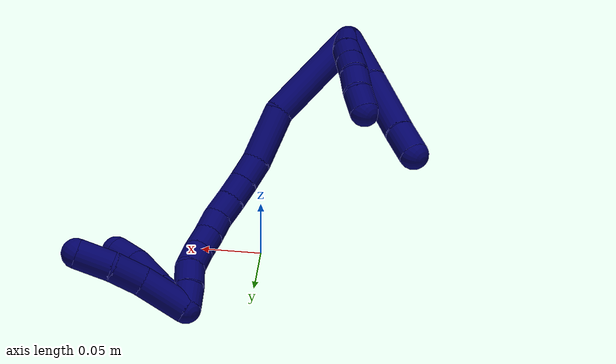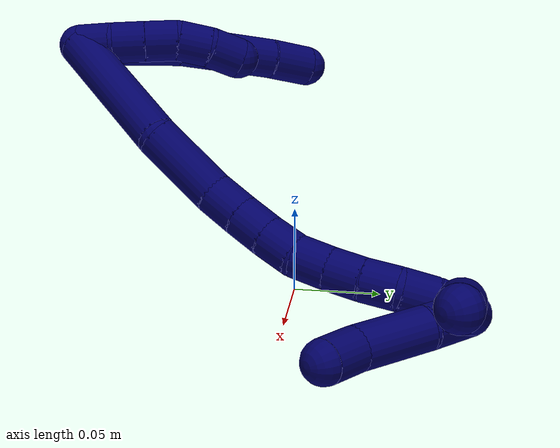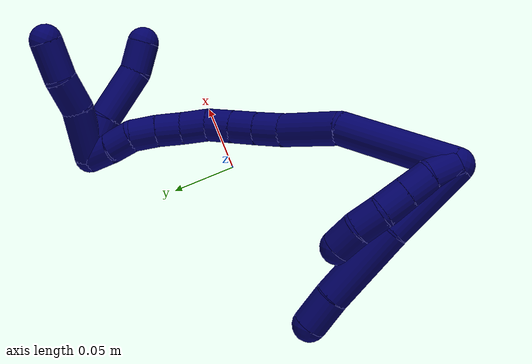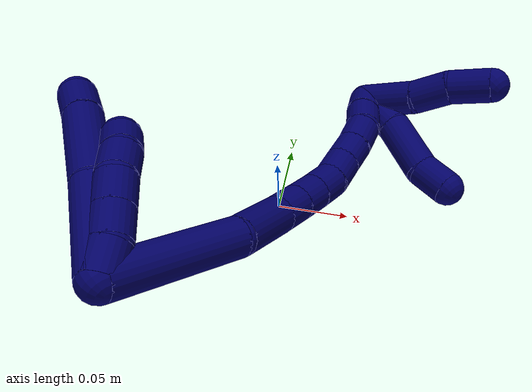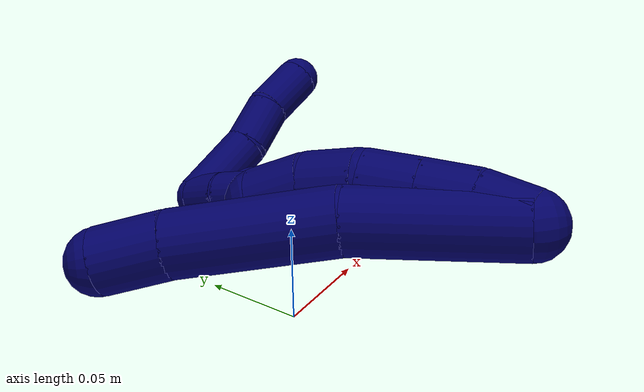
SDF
<sdf version="1.7">
 <world name="default">
  <model name="7">
   <static>0</static>
   <link name="7">
    <collision name="collision-cylinder-e_1_2_8">
     <pose>0.009181 0.007609 0.028771 -0.25856 0.299227 -0.039189</pose>
     <geometry><cylinder><radius>0.0125</radius><length>0.062288</length></cylinder></geometry>
     <surface>
      <friction><ode><mu>1.16</mu><mu2>1.16</mu2><slip1>0</slip1><slip2>0</slip2></ode></friction>
      <contact><ode><kp>1e+06</kp><kd>1</kd><max_vel>0</max_vel><min_depth>0.001</min_depth></ode></contact>
     </surface>
    </collision>
    <visual name="visual-cylinder-e_1_2_8">
     <pose>0.009181 0.007609 0.028771 -0.25856 0.299227 -0.039189</pose>
     <geometry><cylinder><radius>0.0125</radius><length>0.062288</length></cylinder></geometry>
     <material><ambient>0.003922 0 0.403922 1</ambient></material>
    </visual>
    <collision name="collision-cylinder-e_2_8_9">
     <pose>0.023375 0.025432 0.086164 -0.342769 0.1635 -0.02836</pose>
     <geometry><cylinder><radius>0.0125</radius><length>0.061601</length></cylinder></geometry>
     <surface>
      <friction><ode><mu>1.16</mu><mu2>1.16</mu2><slip1>0</slip1><slip2>0</slip2></ode></friction>
      <contact><ode><kp>1e+06</kp><kd>1</kd><max_vel>0</max_vel><min_depth>0.001</min_depth></ode></contact>
     </surface>
    </collision>
    <visual name="visual-cylinder-e_2_8_9">
     <pose>0.023375 0.025432 0.086164 -0.342769 0.1635 -0.02836</pose>
     <geometry><cylinder><radius>0.0125</radius><length>0.061601</length></cylinder></geometry>
     <material><ambient>0.003922 0 0.403922 1</ambient></material>
    </visual>
    <collision name="collision-cylinder-e_3_9_6">
     <pose>0.029195 0.040198 0.126995 -0.356802 0.061822 -0.011151</pose>
     <geometry><cylinder><radius>0.0125</radius><length>0.026111</length></cylinder></geometry>
     <surface>
      <friction><ode><mu>1.16</mu><mu2>1.16</mu2><slip1>0</slip1><slip2>0</slip2></ode></friction>
      <contact><ode><kp>1e+06</kp><kd>1</kd><max_vel>0</max_vel><min_depth>0.001</min_depth></ode></contact>
     </surface>
    </collision>
    <visual name="visual-cylinder-e_3_9_6">
     <pose>0.029195 0.040198 0.126995 -0.356802 0.061822 -0.011151</pose>
     <geometry><cylinder><radius>0.0125</radius><length>0.026111</length></cylinder></geometry>
     <material><ambient>0.003922 0 0.403922 1</ambient></material>
    </visual>
    <collision name="collision-cylinder-e_1_2_10">
     <pose>0.006449 0.00271 0.007146 -0.362456 0.700946 -0.133771</pose>
     <geometry><cylinder><radius>0.0125</radius><length>0.02</length></cylinder></geometry>
     <surface>
      <friction><ode><mu>1.16</mu><mu2>1.16</mu2><slip1>0</slip1><slip2>0</slip2></ode></friction>
      <contact><ode><kp>1e+06</kp><kd>1</kd><max_vel>0</max_vel><min_depth>0.001</min_depth></ode></contact>
     </surface>
    </collision>
    <visual name="visual-cylinder-e_1_2_10">
     <pose>0.006449 0.00271 0.007146 -0.362456 0.700946 -0.133771</pose>
     <geometry><cylinder><radius>0.0125</radius><length>0.02</length></cylinder></geometry>
     <material><ambient>0.003922 0 0.403922 1</ambient></material>
    </visual>
    <collision name="collision-cylinder-e_2_10_11">
     <pose>0.017624 0.00789 0.022752 -0.284139 0.492117 -0.071814</pose>
     <geometry><cylinder><radius>0.0125</radius><length>0.02</length></cylinder></geometry>
     <surface>
      <friction><ode><mu>1.16</mu><mu2>1.16</mu2><slip1>0</slip1><slip2>0</slip2></ode></friction>
      <contact><ode><kp>1e+06</kp><kd>1</kd><max_vel>0</max_vel><min_depth>0.001</min_depth></ode></contact>
     </surface>
    </collision>
    <visual name="visual-cylinder-e_2_10_11">
     <pose>0.017624 0.00789 0.022752 -0.284139 0.492117 -0.071814</pose>
     <geometry><cylinder><radius>0.0125</radius><length>0.02</length></cylinder></geometry>
     <material><ambient>0.003922 0 0.403922 1</ambient></material>
    </visual>
    <collision name="collision-cylinder-e_3_11_12">
     <pose>0.026978 0.012893 0.039706 -0.289662 0.48135 -0.071563</pose>
     <geometry><cylinder><radius>0.0125</radius><length>0.02</length></cylinder></geometry>
     <surface>
      <friction><ode><mu>1.16</mu><mu2>1.16</mu2><slip1>0</slip1><slip2>0</slip2></ode></friction>
      <contact><ode><kp>1e+06</kp><kd>1</kd><max_vel>0</max_vel><min_depth>0.001</min_depth></ode></contact>
     </surface>
    </collision>
    <visual name="visual-cylinder-e_3_11_12">
     <pose>0.026978 0.012893 0.039706 -0.289662 0.48135 -0.071563</pose>
     <geometry><cylinder><radius>0.0125</radius><length>0.02</length></cylinder></geometry>
     <material><ambient>0.003922 0 0.403922 1</ambient></material>
    </visual>
    <collision name="collision-cylinder-e_4_12_13">
     <pose>0.034901 0.02006 0.056426 -0.513194 0.335513 -0.088809</pose>
     <geometry><cylinder><radius>0.0125</radius><length>0.02</length></cylinder></geometry>
     <surface>
      <friction><ode><mu>1.16</mu><mu2>1.16</mu2><slip1>0</slip1><slip2>0</slip2></ode></friction>
      <contact><ode><kp>1e+06</kp><kd>1</kd><max_vel>0</max_vel><min_depth>0.001</min_depth></ode></contact>
     </surface>
    </collision>
    <visual name="visual-cylinder-e_4_12_13">
     <pose>0.034901 0.02006 0.056426 -0.513194 0.335513 -0.088809</pose>
     <geometry><cylinder><radius>0.0125</radius><length>0.02</length></cylinder></geometry>
     <material><ambient>0.003922 0 0.403922 1</ambient></material>
    </visual>
    <collision name="collision-cylinder-e_5_13_5">
     <pose>0.039174 0.029912 0.073128 -0.551648 0.098202 -0.027815</pose>
     <geometry><cylinder><radius>0.0125</radius><length>0.02</length></cylinder></geometry>
     <surface>
      <friction><ode><mu>1.16</mu><mu2>1.16</mu2><slip1>0</slip1><slip2>0</slip2></ode></friction>
      <contact><ode><kp>1e+06</kp><kd>1</kd><max_vel>0</max_vel><min_depth>0.001</min_depth></ode></contact>
     </surface>
    </collision>
    <visual name="visual-cylinder-e_5_13_5">
     <pose>0.039174 0.029912 0.073128 -0.551648 0.098202 -0.027815</pose>
     <geometry><cylinder><radius>0.0125</radius><length>0.02</length></cylinder></geometry>
     <material><ambient>0.003922 0 0.403922 1</ambient></material>
    </visual>
    <collision name="collision-cylinder-e_1_2_14">
     <pose>0.023559 0.037425 0.00159 -1.52834 0.561432 -0.539226</pose>
     <geometry><cylinder><radius>0.0125</radius><length>0.088503</length></cylinder></geometry>
     <surface>
      <friction><ode><mu>1.16</mu><mu2>1.16</mu2><slip1>0</slip1><slip2>0</slip2></ode></friction>
      <contact><ode><kp>1e+06</kp><kd>1</kd><max_vel>0</max_vel><min_depth>0.001</min_depth></ode></contact>
     </surface>
    </collision>
    <visual name="visual-cylinder-e_1_2_14">
     <pose>0.023559 0.037425 0.00159 -1.52834 0.561432 -0.539226</pose>
     <geometry><cylinder><radius>0.0125</radius><length>0.088503</length></cylinder></geometry>
     <material><ambient>0.003922 0 0.403922 1</ambient></material>
    </visual>
    <collision name="collision-cylinder-e_2_14_15">
     <pose>0.055389 0.096125 0.010523 -1.23846 0.352136 -0.252264</pose>
     <geometry><cylinder><radius>0.0125</radius><length>0.047957</length></cylinder></geometry>
     <surface>
      <friction><ode><mu>1.16</mu><mu2>1.16</mu2><slip1>0</slip1><slip2>0</slip2></ode></friction>
      <contact><ode><kp>1e+06</kp><kd>1</kd><max_vel>0</max_vel><min_depth>0.001</min_depth></ode></contact>
     </surface>
    </collision>
    <visual name="visual-cylinder-e_2_14_15">
     <pose>0.055389 0.096125 0.010523 -1.23846 0.352136 -0.252264</pose>
     <geometry><cylinder><radius>0.0125</radius><length>0.047957</length></cylinder></geometry>
     <material><ambient>0.003922 0 0.403922 1</ambient></material>
    </visual>
    <collision name="collision-cylinder-e_3_15_16">
     <pose>0.069104 0.126334 0.020733 -1.26023 0.525803 -0.387621</pose>
     <geometry><cylinder><radius>0.0125</radius><length>0.021696</length></cylinder></geometry>
     <surface>
      <friction><ode><mu>1.16</mu><mu2>1.16</mu2><slip1>0</slip1><slip2>0</slip2></ode></friction>
      <contact><ode><kp>1e+06</kp><kd>1</kd><max_vel>0</max_vel><min_depth>0.001</min_depth></ode></contact>
     </surface>
    </collision>
    <visual name="visual-cylinder-e_3_15_16">
     <pose>0.069104 0.126334 0.020733 -1.26023 0.525803 -0.387621</pose>
     <geometry><cylinder><radius>0.0125</radius><length>0.021696</length></cylinder></geometry>
     <material><ambient>0.003922 0 0.403922 1</ambient></material>
    </visual>
    <collision name="collision-cylinder-e_4_16_17">
     <pose>0.079987 0.14338 0.02619 -1.26177 0.568342 -0.420404</pose>
     <geometry><cylinder><radius>0.0125</radius><length>0.020207</length></cylinder></geometry>
     <surface>
      <friction><ode><mu>1.16</mu><mu2>1.16</mu2><slip1>0</slip1><slip2>0</slip2></ode></friction>
      <contact><ode><kp>1e+06</kp><kd>1</kd><max_vel>0</max_vel><min_depth>0.001</min_depth></ode></contact>
     </surface>
    </collision>
    <visual name="visual-cylinder-e_4_16_17">
     <pose>0.079987 0.14338 0.02619 -1.26177 0.568342 -0.420404</pose>
     <geometry><cylinder><radius>0.0125</radius><length>0.020207</length></cylinder></geometry>
     <material><ambient>0.003922 0 0.403922 1</ambient></material>
    </visual>
    <collision name="collision-cylinder-e_5_17_18">
     <pose>0.091397 0.159302 0.031503 -1.23532 0.625323 -0.451454</pose>
     <geometry><cylinder><radius>0.0125</radius><length>0.020404</length></cylinder></geometry>
     <surface>
      <friction><ode><mu>1.16</mu><mu2>1.16</mu2><slip1>0</slip1><slip2>0</slip2></ode></friction>
      <contact><ode><kp>1e+06</kp><kd>1</kd><max_vel>0</max_vel><min_depth>0.001</min_depth></ode></contact>
     </surface>
    </collision>
    <visual name="visual-cylinder-e_5_17_18">
     <pose>0.091397 0.159302 0.031503 -1.23532 0.625323 -0.451454</pose>
     <geometry><cylinder><radius>0.0125</radius><length>0.020404</length></cylinder></geometry>
     <material><ambient>0.003922 0 0.403922 1</ambient></material>
    </visual>
    <collision name="collision-cylinder-e_6_18_19">
     <pose>0.103745 0.173545 0.039109 -0.921432 0.668348 -0.341302</pose>
     <geometry><cylinder><radius>0.0125</radius><length>0.020579</length></cylinder></geometry>
     <surface>
      <friction><ode><mu>1.16</mu><mu2>1.16</mu2><slip1>0</slip1><slip2>0</slip2></ode></friction>
      <contact><ode><kp>1e+06</kp><kd>1</kd><max_vel>0</max_vel><min_depth>0.001</min_depth></ode></contact>
     </surface>
    </collision>
    <visual name="visual-cylinder-e_6_18_19">
     <pose>0.103745 0.173545 0.039109 -0.921432 0.668348 -0.341302</pose>
     <geometry><cylinder><radius>0.0125</radius><length>0.020579</length></cylinder></geometry>
     <material><ambient>0.003922 0 0.403922 1</ambient></material>
    </visual>
    <collision name="collision-cylinder-e_7_19_20">
     <pose>0.116889 0.185798 0.04852 -0.909807 0.742479 -0.376312</pose>
     <geometry><cylinder><radius>0.0125</radius><length>0.020019</length></cylinder></geometry>
     <surface>
      <friction><ode><mu>1.16</mu><mu2>1.16</mu2><slip1>0</slip1><slip2>0</slip2></ode></friction>
      <contact><ode><kp>1e+06</kp><kd>1</kd><max_vel>0</max_vel><min_depth>0.001</min_depth></ode></contact>
     </surface>
    </collision>
    <visual name="visual-cylinder-e_7_19_20">
     <pose>0.116889 0.185798 0.04852 -0.909807 0.742479 -0.376312</pose>
     <geometry><cylinder><radius>0.0125</radius><length>0.020019</length></cylinder></geometry>
     <material><ambient>0.003922 0 0.403922 1</ambient></material>
    </visual>
    <collision name="collision-cylinder-e_8_20_21">
     <pose>0.130391 0.197124 0.058552 -0.78535 0.713237 -0.306192</pose>
     <geometry><cylinder><radius>0.0125</radius><length>0.020586</length></cylinder></geometry>
     <surface>
      <friction><ode><mu>1.16</mu><mu2>1.16</mu2><slip1>0</slip1><slip2>0</slip2></ode></friction>
      <contact><ode><kp>1e+06</kp><kd>1</kd><max_vel>0</max_vel><min_depth>0.001</min_depth></ode></contact>
     </surface>
    </collision>
    <visual name="visual-cylinder-e_8_20_21">
     <pose>0.130391 0.197124 0.058552 -0.78535 0.713237 -0.306192</pose>
     <geometry><cylinder><radius>0.0125</radius><length>0.020586</length></cylinder></geometry>
     <material><ambient>0.003922 0 0.403922 1</ambient></material>
    </visual>
    <collision name="collision-cylinder-e_9_21_22">
     <pose>0.141016 0.208144 0.071467 -0.639863 0.39855 -0.133622</pose>
     <geometry><cylinder><radius>0.0125</radius><length>0.020047</length></cylinder></geometry>
     <surface>
      <friction><ode><mu>1.16</mu><mu2>1.16</mu2><slip1>0</slip1><slip2>0</slip2></ode></friction>
      <contact><ode><kp>1e+06</kp><kd>1</kd><max_vel>0</max_vel><min_depth>0.001</min_depth></ode></contact>
     </surface>
    </collision>
    <visual name="visual-cylinder-e_9_21_22">
     <pose>0.141016 0.208144 0.071467 -0.639863 0.39855 -0.133622</pose>
     <geometry><cylinder><radius>0.0125</radius><length>0.020047</length></cylinder></geometry>
     <material><ambient>0.003922 0 0.403922 1</ambient></material>
    </visual>
    <collision name="collision-cylinder-e_10_22_1">
     <pose>0.148866 0.220201 0.085323 -0.792721 0.407178 -0.172374</pose>
     <geometry><cylinder><radius>0.0125</radius><length>0.020002</length></cylinder></geometry>
     <surface>
      <friction><ode><mu>1.16</mu><mu2>1.16</mu2><slip1>0</slip1><slip2>0</slip2></ode></friction>
      <contact><ode><kp>1e+06</kp><kd>1</kd><max_vel>0</max_vel><min_depth>0.001</min_depth></ode></contact>
     </surface>
    </collision>
    <visual name="visual-cylinder-e_10_22_1">
     <pose>0.148866 0.220201 0.085323 -0.792721 0.407178 -0.172374</pose>
     <geometry><cylinder><radius>0.0125</radius><length>0.020002</length></cylinder></geometry>
     <material><ambient>0.003922 0 0.403922 1</ambient></material>
    </visual>
    <collision name="collision-cylinder-e_1_1_23">
     <pose>0.16643 0.224031 0.076111 2.97017 0.707989 2.68471</pose>
     <geometry><cylinder><radius>0.0125</radius><length>0.041836</length></cylinder></geometry>
     <surface>
      <friction><ode><mu>1.16</mu><mu2>1.16</mu2><slip1>0</slip1><slip2>0</slip2></ode></friction>
      <contact><ode><kp>1e+06</kp><kd>1</kd><max_vel>0</max_vel><min_depth>0.001</min_depth></ode></contact>
     </surface>
    </collision>
    <visual name="visual-cylinder-e_1_1_23">
     <pose>0.16643 0.224031 0.076111 2.97017 0.707989 2.68471</pose>
     <geometry><cylinder><radius>0.0125</radius><length>0.041836</length></cylinder></geometry>
     <material><ambient>0.003922 0 0.403922 1</ambient></material>
    </visual>
    <collision name="collision-cylinder-e_2_23_24">
     <pose>0.191291 0.220247 0.052408 3.00899 0.946189 2.88359</pose>
     <geometry><cylinder><radius>0.0125</radius><length>0.027757</length></cylinder></geometry>
     <surface>
      <friction><ode><mu>1.16</mu><mu2>1.16</mu2><slip1>0</slip1><slip2>0</slip2></ode></friction>
      <contact><ode><kp>1e+06</kp><kd>1</kd><max_vel>0</max_vel><min_depth>0.001</min_depth></ode></contact>
     </surface>
    </collision>
    <visual name="visual-cylinder-e_2_23_24">
     <pose>0.191291 0.220247 0.052408 3.00899 0.946189 2.88359</pose>
     <geometry><cylinder><radius>0.0125</radius><length>0.027757</length></cylinder></geometry>
     <material><ambient>0.003922 0 0.403922 1</ambient></material>
    </visual>
    <collision name="collision-cylinder-e_3_24_4">
     <pose>0.213032 0.220254 0.033405 -3.04337 0.76081 -2.897</pose>
     <geometry><cylinder><radius>0.0125</radius><length>0.030407</length></cylinder></geometry>
     <surface>
      <friction><ode><mu>1.16</mu><mu2>1.16</mu2><slip1>0</slip1><slip2>0</slip2></ode></friction>
      <contact><ode><kp>1e+06</kp><kd>1</kd><max_vel>0</max_vel><min_depth>0.001</min_depth></ode></contact>
     </surface>
    </collision>
    <visual name="visual-cylinder-e_3_24_4">
     <pose>0.213032 0.220254 0.033405 -3.04337 0.76081 -2.897</pose>
     <geometry><cylinder><radius>0.0125</radius><length>0.030407</length></cylinder></geometry>
     <material><ambient>0.003922 0 0.403922 1</ambient></material>
    </visual>
    <collision name="collision-cylinder-e_1_1_25">
     <pose>0.153233 0.226576 0.075287 3.13153 0.024638 2.36602</pose>
     <geometry><cylinder><radius>0.0125</radius><length>0.032975</length></cylinder></geometry>
     <surface>
      <friction><ode><mu>1.16</mu><mu2>1.16</mu2><slip1>0</slip1><slip2>0</slip2></ode></friction>
      <contact><ode><kp>1e+06</kp><kd>1</kd><max_vel>0</max_vel><min_depth>0.001</min_depth></ode></contact>
     </surface>
    </collision>
    <visual name="visual-cylinder-e_1_1_25">
     <pose>0.153233 0.226576 0.075287 3.13153 0.024638 2.36602</pose>
     <geometry><cylinder><radius>0.0125</radius><length>0.032975</length></cylinder></geometry>
     <material><ambient>0.003922 0 0.403922 1</ambient></material>
    </visual>
    <collision name="collision-cylinder-e_2_25_26">
     <pose>0.149515 0.225712 0.037681 3.10857 -0.19272 -2.80314</pose>
     <geometry><cylinder><radius>0.0125</radius><length>0.043069</length></cylinder></geometry>
     <surface>
      <friction><ode><mu>1.16</mu><mu2>1.16</mu2><slip1>0</slip1><slip2>0</slip2></ode></friction>
      <contact><ode><kp>1e+06</kp><kd>1</kd><max_vel>0</max_vel><min_depth>0.001</min_depth></ode></contact>
     </surface>
    </collision>
    <visual name="visual-cylinder-e_2_25_26">
     <pose>0.149515 0.225712 0.037681 3.10857 -0.19272 -2.80314</pose>
     <geometry><cylinder><radius>0.0125</radius><length>0.043069</length></cylinder></geometry>
     <material><ambient>0.003922 0 0.403922 1</ambient></material>
    </visual>
    <collision name="collision-cylinder-e_3_26_3">
     <pose>0.146795 0.225534 0.004673 -3.09783 0.117548 -2.42939</pose>
     <geometry><cylinder><radius>0.0125</radius><length>0.023955</length></cylinder></geometry>
     <surface>
      <friction><ode><mu>1.16</mu><mu2>1.16</mu2><slip1>0</slip1><slip2>0</slip2></ode></friction>
      <contact><ode><kp>1e+06</kp><kd>1</kd><max_vel>0</max_vel><min_depth>0.001</min_depth></ode></contact>
     </surface>
    </collision>
    <visual name="visual-cylinder-e_3_26_3">
     <pose>0.146795 0.225534 0.004673 -3.09783 0.117548 -2.42939</pose>
     <geometry><cylinder><radius>0.0125</radius><length>0.023955</length></cylinder></geometry>
     <material><ambient>0.003922 0 0.403922 1</ambient></material>
    </visual>
    <collision name="collision-sphere-3">
     <pose>0.1482 0.226055 -0.007211 0 -0 0</pose>
     <geometry><sphere><radius>0.0125</radius></sphere></geometry>
     <surface>
      <friction><ode><mu>1.16</mu><mu2>1.16</mu2><slip1>0</slip1><slip2>0</slip2></ode></friction>
      <contact><ode><kp>1e+06</kp><kd>1</kd><max_vel>0</max_vel><min_depth>0.001</min_depth></ode></contact>
     </surface>
    </collision>
    <visual name="visual-sphere-3">
     <pose>0.1482 0.226055 -0.007211 0 -0 0</pose>
     <geometry><sphere><radius>0.0125</radius></sphere></geometry>
     <material><ambient>0.003922 0 0.403922 1</ambient></material>
    </visual>
    <collision name="collision-sphere-26">
     <pose>0.14539 0.225014 0.016557 0 -0 0</pose>
     <geometry><sphere><radius>0.0125</radius></sphere></geometry>
     <surface>
      <friction><ode><mu>1.16</mu><mu2>1.16</mu2><slip1>0</slip1><slip2>0</slip2></ode></friction>
      <contact><ode><kp>1e+06</kp><kd>1</kd><max_vel>0</max_vel><min_depth>0.001</min_depth></ode></contact>
     </surface>
    </collision>
    <visual name="visual-sphere-26">
     <pose>0.14539 0.225014 0.016557 0 -0 0</pose>
     <geometry><sphere><radius>0.0125</radius></sphere></geometry>
     <material><ambient>0.003922 0 0.403922 1</ambient></material>
    </visual>
    <collision name="collision-sphere-25">
     <pose>0.153639 0.22641 0.058805 0 -0 0</pose>
     <geometry><sphere><radius>0.0125</radius></sphere></geometry>
     <surface>
      <friction><ode><mu>1.16</mu><mu2>1.16</mu2><slip1>0</slip1><slip2>0</slip2></ode></friction>
      <contact><ode><kp>1e+06</kp><kd>1</kd><max_vel>0</max_vel><min_depth>0.001</min_depth></ode></contact>
     </surface>
    </collision>
    <visual name="visual-sphere-25">
     <pose>0.153639 0.22641 0.058805 0 -0 0</pose>
     <geometry><sphere><radius>0.0125</radius></sphere></geometry>
     <material><ambient>0.003922 0 0.403922 1</ambient></material>
    </visual>
    <collision name="collision-sphere-4">
     <pose>0.223515 0.221333 0.022447 0 -0 0</pose>
     <geometry><sphere><radius>0.0125</radius></sphere></geometry>
     <surface>
      <friction><ode><mu>1.16</mu><mu2>1.16</mu2><slip1>0</slip1><slip2>0</slip2></ode></friction>
      <contact><ode><kp>1e+06</kp><kd>1</kd><max_vel>0</max_vel><min_depth>0.001</min_depth></ode></contact>
     </surface>
    </collision>
    <visual name="visual-sphere-4">
     <pose>0.223515 0.221333 0.022447 0 -0 0</pose>
     <geometry><sphere><radius>0.0125</radius></sphere></geometry>
     <material><ambient>0.003922 0 0.403922 1</ambient></material>
    </visual>
    <collision name="collision-sphere-24">
     <pose>0.20255 0.219174 0.044364 0 -0 0</pose>
     <geometry><sphere><radius>0.0125</radius></sphere></geometry>
     <surface>
      <friction><ode><mu>1.16</mu><mu2>1.16</mu2><slip1>0</slip1><slip2>0</slip2></ode></friction>
      <contact><ode><kp>1e+06</kp><kd>1</kd><max_vel>0</max_vel><min_depth>0.001</min_depth></ode></contact>
     </surface>
    </collision>
    <visual name="visual-sphere-24">
     <pose>0.20255 0.219174 0.044364 0 -0 0</pose>
     <geometry><sphere><radius>0.0125</radius></sphere></geometry>
     <material><ambient>0.003922 0 0.403922 1</ambient></material>
    </visual>
    <collision name="collision-sphere-23">
     <pose>0.180033 0.22132 0.060453 0 -0 0</pose>
     <geometry><sphere><radius>0.0125</radius></sphere></geometry>
     <surface>
      <friction><ode><mu>1.16</mu><mu2>1.16</mu2><slip1>0</slip1><slip2>0</slip2></ode></friction>
      <contact><ode><kp>1e+06</kp><kd>1</kd><max_vel>0</max_vel><min_depth>0.001</min_depth></ode></contact>
     </surface>
    </collision>
    <visual name="visual-sphere-23">
     <pose>0.180033 0.22132 0.060453 0 -0 0</pose>
     <geometry><sphere><radius>0.0125</radius></sphere></geometry>
     <material><ambient>0.003922 0 0.403922 1</ambient></material>
    </visual>
    <collision name="collision-sphere-1">
     <pose>0.152827 0.226742 0.091769 0 -0 0</pose>
     <geometry><sphere><radius>0.0125</radius></sphere></geometry>
     <surface>
      <friction><ode><mu>1.16</mu><mu2>1.16</mu2><slip1>0</slip1><slip2>0</slip2></ode></friction>
      <contact><ode><kp>1e+06</kp><kd>1</kd><max_vel>0</max_vel><min_depth>0.001</min_depth></ode></contact>
     </surface>
    </collision>
    <visual name="visual-sphere-1">
     <pose>0.152827 0.226742 0.091769 0 -0 0</pose>
     <geometry><sphere><radius>0.0125</radius></sphere></geometry>
     <material><ambient>0.003922 0 0.403922 1</ambient></material>
    </visual>
    <collision name="collision-sphere-22">
     <pose>0.144906 0.21366 0.078877 0 -0 0</pose>
     <geometry><sphere><radius>0.0125</radius></sphere></geometry>
     <surface>
      <friction><ode><mu>1.16</mu><mu2>1.16</mu2><slip1>0</slip1><slip2>0</slip2></ode></friction>
      <contact><ode><kp>1e+06</kp><kd>1</kd><max_vel>0</max_vel><min_depth>0.001</min_depth></ode></contact>
     </surface>
    </collision>
    <visual name="visual-sphere-22">
     <pose>0.144906 0.21366 0.078877 0 -0 0</pose>
     <geometry><sphere><radius>0.0125</radius></sphere></geometry>
     <material><ambient>0.003922 0 0.403922 1</ambient></material>
    </visual>
    <collision name="collision-sphere-21">
     <pose>0.137126 0.202628 0.064056 0 -0 0</pose>
     <geometry><sphere><radius>0.0125</radius></sphere></geometry>
     <surface>
      <friction><ode><mu>1.16</mu><mu2>1.16</mu2><slip1>0</slip1><slip2>0</slip2></ode></friction>
      <contact><ode><kp>1e+06</kp><kd>1</kd><max_vel>0</max_vel><min_depth>0.001</min_depth></ode></contact>
     </surface>
    </collision>
    <visual name="visual-sphere-21">
     <pose>0.137126 0.202628 0.064056 0 -0 0</pose>
     <geometry><sphere><radius>0.0125</radius></sphere></geometry>
     <material><ambient>0.003922 0 0.403922 1</ambient></material>
    </visual>
    <collision name="collision-sphere-11">
     <pose>0.022349 0.010361 0.031212 0 -0 0</pose>
     <geometry><sphere><radius>0.0125</radius></sphere></geometry>
     <surface>
      <friction><ode><mu>1.16</mu><mu2>1.16</mu2><slip1>0</slip1><slip2>0</slip2></ode></friction>
      <contact><ode><kp>1e+06</kp><kd>1</kd><max_vel>0</max_vel><min_depth>0.001</min_depth></ode></contact>
     </surface>
    </collision>
    <visual name="visual-sphere-11">
     <pose>0.022349 0.010361 0.031212 0 -0 0</pose>
     <geometry><sphere><radius>0.0125</radius></sphere></geometry>
     <material><ambient>0.003922 0 0.403922 1</ambient></material>
    </visual>
    <collision name="collision-sphere-10">
     <pose>0.012899 0.005419 0.014292 0 -0 0</pose>
     <geometry><sphere><radius>0.0125</radius></sphere></geometry>
     <surface>
      <friction><ode><mu>1.16</mu><mu2>1.16</mu2><slip1>0</slip1><slip2>0</slip2></ode></friction>
      <contact><ode><kp>1e+06</kp><kd>1</kd><max_vel>0</max_vel><min_depth>0.001</min_depth></ode></contact>
     </surface>
    </collision>
    <visual name="visual-sphere-10">
     <pose>0.012899 0.005419 0.014292 0 -0 0</pose>
     <geometry><sphere><radius>0.0125</radius></sphere></geometry>
     <material><ambient>0.003922 0 0.403922 1</ambient></material>
    </visual>
    <collision name="collision-sphere-6">
     <pose>0.030001 0.044749 0.139205 0 -0 0</pose>
     <geometry><sphere><radius>0.0125</radius></sphere></geometry>
     <surface>
      <friction><ode><mu>1.16</mu><mu2>1.16</mu2><slip1>0</slip1><slip2>0</slip2></ode></friction>
      <contact><ode><kp>1e+06</kp><kd>1</kd><max_vel>0</max_vel><min_depth>0.001</min_depth></ode></contact>
     </surface>
    </collision>
    <visual name="visual-sphere-6">
     <pose>0.030001 0.044749 0.139205 0 -0 0</pose>
     <geometry><sphere><radius>0.0125</radius></sphere></geometry>
     <material><ambient>0.003922 0 0.403922 1</ambient></material>
    </visual>
    <collision name="collision-sphere-9">
     <pose>0.028388 0.035646 0.114785 0 -0 0</pose>
     <geometry><sphere><radius>0.0125</radius></sphere></geometry>
     <surface>
      <friction><ode><mu>1.16</mu><mu2>1.16</mu2><slip1>0</slip1><slip2>0</slip2></ode></friction>
      <contact><ode><kp>1e+06</kp><kd>1</kd><max_vel>0</max_vel><min_depth>0.001</min_depth></ode></contact>
     </surface>
    </collision>
    <visual name="visual-sphere-9">
     <pose>0.028388 0.035646 0.114785 0 -0 0</pose>
     <geometry><sphere><radius>0.0125</radius></sphere></geometry>
     <material><ambient>0.003922 0 0.403922 1</ambient></material>
    </visual>
    <collision name="collision-sphere-2">
     <geometry><sphere><radius>0.0125</radius></sphere></geometry>
     <surface>
      <friction><ode><mu>1.16</mu><mu2>1.16</mu2><slip1>0</slip1><slip2>0</slip2></ode></friction>
      <contact><ode><kp>1e+06</kp><kd>1</kd><max_vel>0</max_vel><min_depth>0.001</min_depth></ode></contact>
     </surface>
    </collision>
    <visual name="visual-sphere-2">
     <geometry><sphere><radius>0.0125</radius></sphere></geometry>
     <material><ambient>0.003922 0 0.403922 1</ambient></material>
    </visual>
    <collision name="collision-sphere-19">
     <pose>0.110121 0.179977 0.043993 0 -0 0</pose>
     <geometry><sphere><radius>0.0125</radius></sphere></geometry>
     <surface>
      <friction><ode><mu>1.16</mu><mu2>1.16</mu2><slip1>0</slip1><slip2>0</slip2></ode></friction>
      <contact><ode><kp>1e+06</kp><kd>1</kd><max_vel>0</max_vel><min_depth>0.001</min_depth></ode></contact>
     </surface>
    </collision>
    <visual name="visual-sphere-19">
     <pose>0.110121 0.179977 0.043993 0 -0 0</pose>
     <geometry><sphere><radius>0.0125</radius></sphere></geometry>
     <material><ambient>0.003922 0 0.403922 1</ambient></material>
    </visual>
    <collision name="collision-sphere-8">
     <pose>0.018361 0.015219 0.057542 0 -0 0</pose>
     <geometry><sphere><radius>0.0125</radius></sphere></geometry>
     <surface>
      <friction><ode><mu>1.16</mu><mu2>1.16</mu2><slip1>0</slip1><slip2>0</slip2></ode></friction>
      <contact><ode><kp>1e+06</kp><kd>1</kd><max_vel>0</max_vel><min_depth>0.001</min_depth></ode></contact>
     </surface>
    </collision>
    <visual name="visual-sphere-8">
     <pose>0.018361 0.015219 0.057542 0 -0 0</pose>
     <geometry><sphere><radius>0.0125</radius></sphere></geometry>
     <material><ambient>0.003922 0 0.403922 1</ambient></material>
    </visual>
    <collision name="collision-sphere-12">
     <pose>0.031608 0.015424 0.0482 0 -0 0</pose>
     <geometry><sphere><radius>0.0125</radius></sphere></geometry>
     <surface>
      <friction><ode><mu>1.16</mu><mu2>1.16</mu2><slip1>0</slip1><slip2>0</slip2></ode></friction>
      <contact><ode><kp>1e+06</kp><kd>1</kd><max_vel>0</max_vel><min_depth>0.001</min_depth></ode></contact>
     </surface>
    </collision>
    <visual name="visual-sphere-12">
     <pose>0.031608 0.015424 0.0482 0 -0 0</pose>
     <geometry><sphere><radius>0.0125</radius></sphere></geometry>
     <material><ambient>0.003922 0 0.403922 1</ambient></material>
    </visual>
    <collision name="collision-sphere-13">
     <pose>0.038193 0.024696 0.064653 0 -0 0</pose>
     <geometry><sphere><radius>0.0125</radius></sphere></geometry>
     <surface>
      <friction><ode><mu>1.16</mu><mu2>1.16</mu2><slip1>0</slip1><slip2>0</slip2></ode></friction>
      <contact><ode><kp>1e+06</kp><kd>1</kd><max_vel>0</max_vel><min_depth>0.001</min_depth></ode></contact>
     </surface>
    </collision>
    <visual name="visual-sphere-13">
     <pose>0.038193 0.024696 0.064653 0 -0 0</pose>
     <geometry><sphere><radius>0.0125</radius></sphere></geometry>
     <material><ambient>0.003922 0 0.403922 1</ambient></material>
    </visual>
    <collision name="collision-sphere-5">
     <pose>0.040154 0.035127 0.081604 0 -0 0</pose>
     <geometry><sphere><radius>0.0125</radius></sphere></geometry>
     <surface>
      <friction><ode><mu>1.16</mu><mu2>1.16</mu2><slip1>0</slip1><slip2>0</slip2></ode></friction>
      <contact><ode><kp>1e+06</kp><kd>1</kd><max_vel>0</max_vel><min_depth>0.001</min_depth></ode></contact>
     </surface>
    </collision>
    <visual name="visual-sphere-5">
     <pose>0.040154 0.035127 0.081604 0 -0 0</pose>
     <geometry><sphere><radius>0.0125</radius></sphere></geometry>
     <material><ambient>0.003922 0 0.403922 1</ambient></material>
    </visual>
    <collision name="collision-sphere-14">
     <pose>0.047119 0.07485 0.00318 0 -0 0</pose>
     <geometry><sphere><radius>0.0125</radius></sphere></geometry>
     <surface>
      <friction><ode><mu>1.16</mu><mu2>1.16</mu2><slip1>0</slip1><slip2>0</slip2></ode></friction>
      <contact><ode><kp>1e+06</kp><kd>1</kd><max_vel>0</max_vel><min_depth>0.001</min_depth></ode></contact>
     </surface>
    </collision>
    <visual name="visual-sphere-14">
     <pose>0.047119 0.07485 0.00318 0 -0 0</pose>
     <geometry><sphere><radius>0.0125</radius></sphere></geometry>
     <material><ambient>0.003922 0 0.403922 1</ambient></material>
    </visual>
    <collision name="collision-sphere-15">
     <pose>0.063659 0.117401 0.017866 0 -0 0</pose>
     <geometry><sphere><radius>0.0125</radius></sphere></geometry>
     <surface>
      <friction><ode><mu>1.16</mu><mu2>1.16</mu2><slip1>0</slip1><slip2>0</slip2></ode></friction>
      <contact><ode><kp>1e+06</kp><kd>1</kd><max_vel>0</max_vel><min_depth>0.001</min_depth></ode></contact>
     </surface>
    </collision>
    <visual name="visual-sphere-15">
     <pose>0.063659 0.117401 0.017866 0 -0 0</pose>
     <geometry><sphere><radius>0.0125</radius></sphere></geometry>
     <material><ambient>0.003922 0 0.403922 1</ambient></material>
    </visual>
    <collision name="collision-sphere-16">
     <pose>0.074549 0.135268 0.0236 0 -0 0</pose>
     <geometry><sphere><radius>0.0125</radius></sphere></geometry>
     <surface>
      <friction><ode><mu>1.16</mu><mu2>1.16</mu2><slip1>0</slip1><slip2>0</slip2></ode></friction>
      <contact><ode><kp>1e+06</kp><kd>1</kd><max_vel>0</max_vel><min_depth>0.001</min_depth></ode></contact>
     </surface>
    </collision>
    <visual name="visual-sphere-16">
     <pose>0.074549 0.135268 0.0236 0 -0 0</pose>
     <geometry><sphere><radius>0.0125</radius></sphere></geometry>
     <material><ambient>0.003922 0 0.403922 1</ambient></material>
    </visual>
    <collision name="collision-sphere-17">
     <pose>0.085425 0.151492 0.02878 0 -0 0</pose>
     <geometry><sphere><radius>0.0125</radius></sphere></geometry>
     <surface>
      <friction><ode><mu>1.16</mu><mu2>1.16</mu2><slip1>0</slip1><slip2>0</slip2></ode></friction>
      <contact><ode><kp>1e+06</kp><kd>1</kd><max_vel>0</max_vel><min_depth>0.001</min_depth></ode></contact>
     </surface>
    </collision>
    <visual name="visual-sphere-17">
     <pose>0.085425 0.151492 0.02878 0 -0 0</pose>
     <geometry><sphere><radius>0.0125</radius></sphere></geometry>
     <material><ambient>0.003922 0 0.403922 1</ambient></material>
    </visual>
    <collision name="collision-sphere-18">
     <pose>0.097368 0.167112 0.034226 0 -0 0</pose>
     <geometry><sphere><radius>0.0125</radius></sphere></geometry>
     <surface>
      <friction><ode><mu>1.16</mu><mu2>1.16</mu2><slip1>0</slip1><slip2>0</slip2></ode></friction>
      <contact><ode><kp>1e+06</kp><kd>1</kd><max_vel>0</max_vel><min_depth>0.001</min_depth></ode></contact>
     </surface>
    </collision>
    <visual name="visual-sphere-18">
     <pose>0.097368 0.167112 0.034226 0 -0 0</pose>
     <geometry><sphere><radius>0.0125</radius></sphere></geometry>
     <material><ambient>0.003922 0 0.403922 1</ambient></material>
    </visual>
    <collision name="collision-sphere-20">
     <pose>0.123656 0.19162 0.053047 0 -0 0</pose>
     <geometry><sphere><radius>0.0125</radius></sphere></geometry>
     <surface>
      <friction><ode><mu>1.16</mu><mu2>1.16</mu2><slip1>0</slip1><slip2>0</slip2></ode></friction>
      <contact><ode><kp>1e+06</kp><kd>1</kd><max_vel>0</max_vel><min_depth>0.001</min_depth></ode></contact>
     </surface>
    </collision>
    <visual name="visual-sphere-20">
     <pose>0.123656 0.19162 0.053047 0 -0 0</pose>
     <geometry><sphere><radius>0.0125</radius></sphere></geometry>
     <material><ambient>0.003922 0 0.403922 1</ambient></material>
    </visual>
    <inertial>
     <pose>0.082295 0.114766 0.043545 0 -0 0</pose>
     <mass>0.75</mass>
     <inertia>
      <ixx>8.4e-05</ixx>
      <ixy>0</ixy>
      <ixz>0</ixz>
      <iyy>9.9e-05</iyy>
      <iyz>0</iyz>
      <izz>-0.000138</izz>
     </inertia>
    </inertial>
   </link>
   <pose>-0.059023 -0.140022 0.128453 -1.58717 -0.547986 0.807465</pose>
  </model>
 </world>
</sdf>
